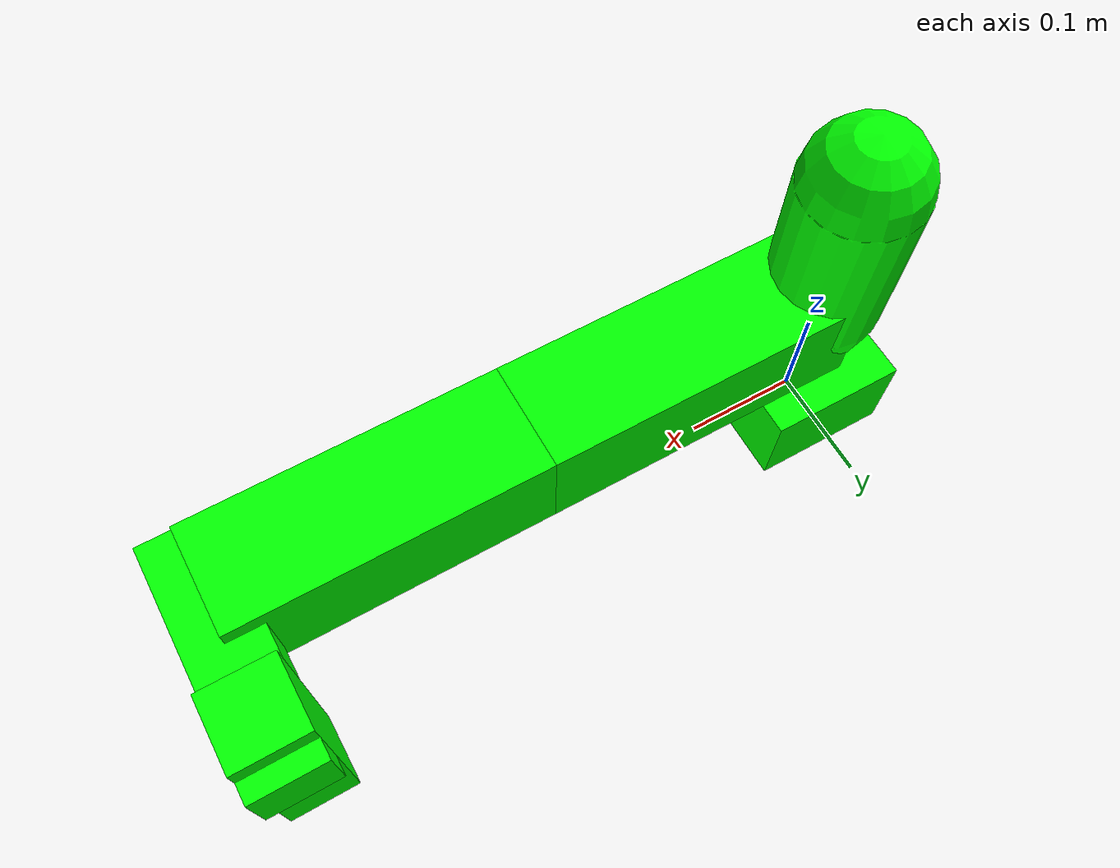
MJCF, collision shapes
<mujoco model="ec63_simplified">

  <asset>
    <mesh name="base_link" content_type="model/stl" file="meshes/base_link.STL"/>
    <mesh name="link1" content_type="model/stl" file="meshes/link1.STL"/>
    <mesh name="link2" content_type="model/stl" file="meshes/link2.STL"/>
    <mesh name="link3" content_type="model/stl" file="meshes/link3.STL"/>
    <mesh name="link4" content_type="model/stl" file="meshes/link4.STL"/>
    <mesh name="link5" content_type="model/stl" file="meshes/link5.STL"/>
    <mesh name="link6" content_type="model/stl" file="meshes/link6.STL"/>
  </asset>

  <worldbody>
    <geom type="mesh" rgba="0.79216 0.81961 0.93333 1" mesh="base_link" contype="0" conaffinity="0"/>
    <geom type="box" size="0.06 0.06 0.04" pos="0 0 0.02" rgba="0 1 0 0.3"/>
    <body name="link1" pos="0 0 0.14">
      <inertial pos="-5.96933e-07 0.00718799 0.00130597" quat="0.352905 0.612755 -0.612711 0.352951" mass="1.0469" diaginertia="0.00149916 0.00131623 0.00111326"/>
      <joint name="joint1" pos="0 0 0" axis="0 0 1" range="-6.2832 6.2832" actuatorfrcrange="-90 90"/>
      <geom type="mesh" rgba="1 1 1 1" mesh="link1" contype="0" conaffinity="0"/>
      <geom type="capsule" size="0.05 0.07" pos="0 0 0.07" rgba="0 1 0 0.3"/>
      <body name="link2" quat="0.707105 -0.707108 0 0">
        <inertial pos="0.13499 -8.1271e-07 0.12053" quat="-0.00030356 0.707106 -0.000286393 0.707108" mass="2.6439" diaginertia="0.004596 0.0044238 0.0032939"/>
        <joint name="joint2" pos="0 0 0" axis="0 0 1" range="-6.2832 6.2832" actuatorfrcrange="-90 90"/>
        <geom type="mesh" rgba="1 1 1 1" mesh="link2" contype="0" conaffinity="0"/>
        <geom type="box" size="0.135 0.045 0.045" pos="0.135 0 0" rgba="0 1 0 0.3"/>
        <body name="link3" pos="0.27 0 0">
          <inertial pos="0.12895 -1.241e-05 0.011444" quat="-0.00892403 0.739271 -0.00978884 0.673278" mass="1.4492" diaginertia="0.00206109 0.00205289 0.00126952"/>
          <joint name="joint3" pos="0 0 0" axis="0 0 1" range="-2.7925 2.7925" actuatorfrcrange="-90 90"/>
          <geom type="mesh" rgba="1 1 1 1" mesh="link3" contype="0" conaffinity="0"/>
          <geom type="box" size="0.128 0.045 0.045" pos="0.128 0 0" rgba="0 1 0 0.3"/>
          <body name="link4" pos="0.256 0 0">
            <inertial pos="-5.2284e-07 -0.00070291 0.097494" quat="0.681885 -0.187098 0.187139 0.681914" mass="0.53436" diaginertia="0.000474891 0.00041486 0.000342099"/>
            <joint name="joint4" pos="0 0 0" axis="0 0 1" range="-6.2832 6.2832" actuatorfrcrange="-20 20"/>
            <geom type="mesh" rgba="1 1 1 1" mesh="link4" contype="0" conaffinity="0"/>
            <geom type="box" size="0.03 0.03 0.1" pos="0 0 0.05" rgba="0 1 0 0.3"/>
            <body name="link5" pos="0 0 0.103" quat="0.707105 -0.707108 0 0">
              <inertial pos="-5.2273e-07 -0.0012029 0.091994" quat="0.681885 -0.187098 0.187139 0.681914" mass="0.53436" diaginertia="0.000474891 0.00041486 0.000342099"/>
              <joint name="joint5" pos="0 0 0" axis="0 0 1" range="-6.2832 6.2832" actuatorfrcrange="-20 20"/>
              <geom type="mesh" rgba="1 1 1 1" mesh="link5" contype="0" conaffinity="0"/>
              <geom type="box" size="0.03 0.03 0.1" pos="0 0 0.05" rgba="0 1 0 0.3"/>
              <body name="link6" pos="0 0.089 0.098" quat="0.707105 -0.707108 0 0">
                <inertial pos="3.41211e-12 1.18001e-05 0.00884952" quat="0.70711 6.08195e-05 -6.08189e-05 0.707103" mass="0.36467" diaginertia="0.000459069 0.000444438 0.0001512"/>
                <joint name="joint6" pos="0 0 0" axis="0 0 1" range="-6.2832 6.2832" actuatorfrcrange="-20 20"/>
                <geom type="mesh" rgba="0.79216 0.81961 0.93333 1" mesh="link6" contype="0" conaffinity="0"/>
                <geom size="0.019 0.012 0.034" pos="0 0 0.034" type="box" rgba="0.1 0.1 0.1 1"/>
                <body name="claw_finger_1" pos="0.02 0 0.076">
                  <inertial pos="0 0 0" quat="0.995932 0 0.0901074 0" mass="0.0328" diaginertia="1.44461e-05 1.438e-05 2.87189e-07"/>
                  <joint name="finger_1_joint" pos="0 0 0" axis="-1 0 0" type="slide" range="0 0.01" actuatorfrcrange="-10 10" damping="0.1"/>
                  <geom size="0.0025 0.004 0.0205" pos="0.005 0 0.0125" type="box" rgba="0.8 0.8 0.8 1"/>
                </body>
                <body name="claw_finger_2" pos="-0.02 0 0.076">
                  <inertial pos="0 0 0" quat="0.995932 0 -0.0901074 0" mass="0.0328" diaginertia="1.44461e-05 1.438e-05 2.87189e-07"/>
                  <joint name="finger_2_joint" pos="0 0 0" axis="1 0 0" type="slide" range="0 0.01" actuatorfrcrange="-10 10" damping="0.1"/>
                  <geom size="0.0025 0.004 0.0205" pos="-0.005 0 0.0125" type="box" rgba="0.8 0.8 0.8 1"/>
                </body>
              </body>
            </body>
          </body>
        </body>
      </body>
    </body>
  </worldbody>
</mujoco>
